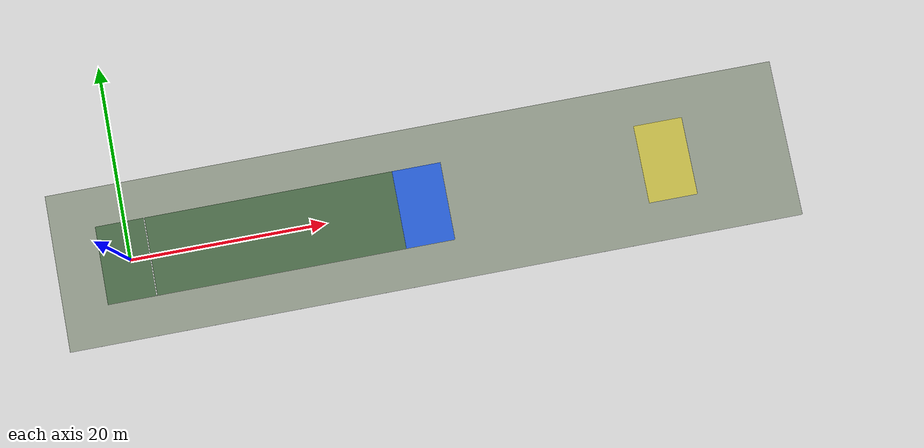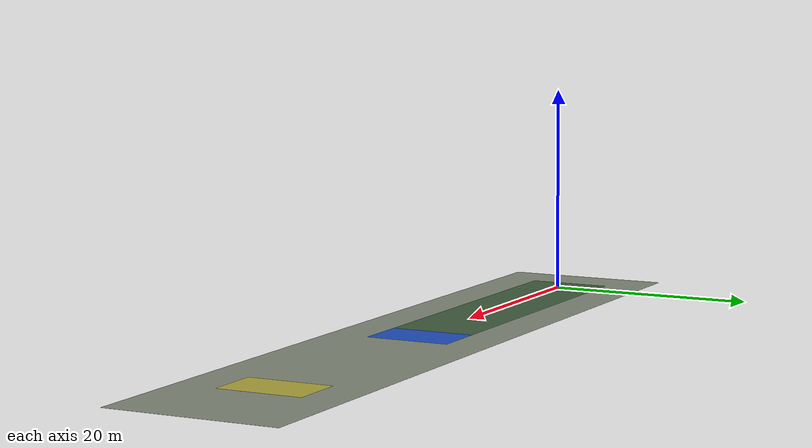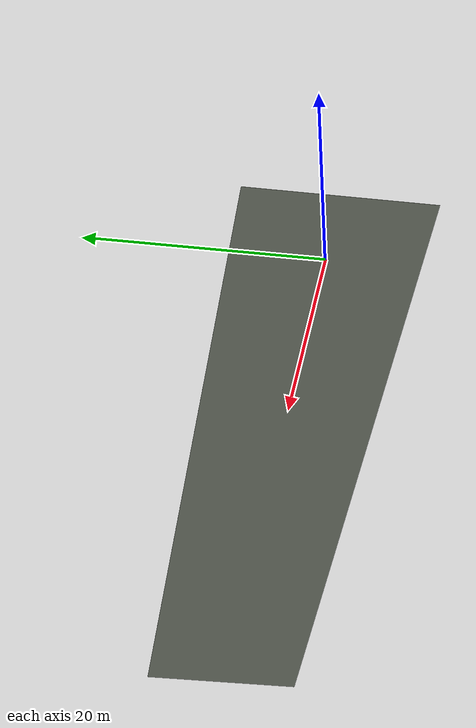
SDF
<?xml version="1.0"?>
<sdf version="1.9">
  <model name="cuadc_field">
    <static>true</static>
    <link name="link">
      <visual name="ground">
        <pose>30 0 -0.006 0 0 0</pose>
        <geometry><box><size>75 16 0.01</size></box></geometry>
        <material><ambient>0.55 0.58 0.52 1</ambient><diffuse>0.55 0.58 0.52 1</diffuse></material>
      </visual>
      <visual name="takeoff_area">
        <pose>13.5 0 0.001 0 0 0</pose>
        <geometry><box><size>33 8 0.003</size></box></geometry>
        <material><ambient>0.18 0.35 0.18 0.65</ambient><diffuse>0.18 0.35 0.18 0.65</diffuse></material>
      </visual>
      <visual name="takeoff_line">
        <pose>2 0 0.006 0 0 0</pose>
        <geometry><box><size>0.08 8 0.006</size></box></geometry>
        <material><ambient>1 1 1 1</ambient><diffuse>1 1 1 1</diffuse></material>
      </visual>
      <visual name="drop_area">
        <pose>30 0 0.002 0 0 0</pose>
        <geometry><box><size>5 8 0.004</size></box></geometry>
        <material><ambient>0.05 0.32 0.95 0.75</ambient><diffuse>0.05 0.32 0.95 0.75</diffuse></material>
      </visual>
      <visual name="recon_area">
        <pose>55 0 0.002 0 0 0</pose>
        <geometry><box><size>5 8 0.004</size></box></geometry>
        <material><ambient>0.95 0.85 0.10 0.55</ambient><diffuse>0.95 0.85 0.10 0.55</diffuse></material>
      </visual>
    </link>
  </model>
</sdf>
